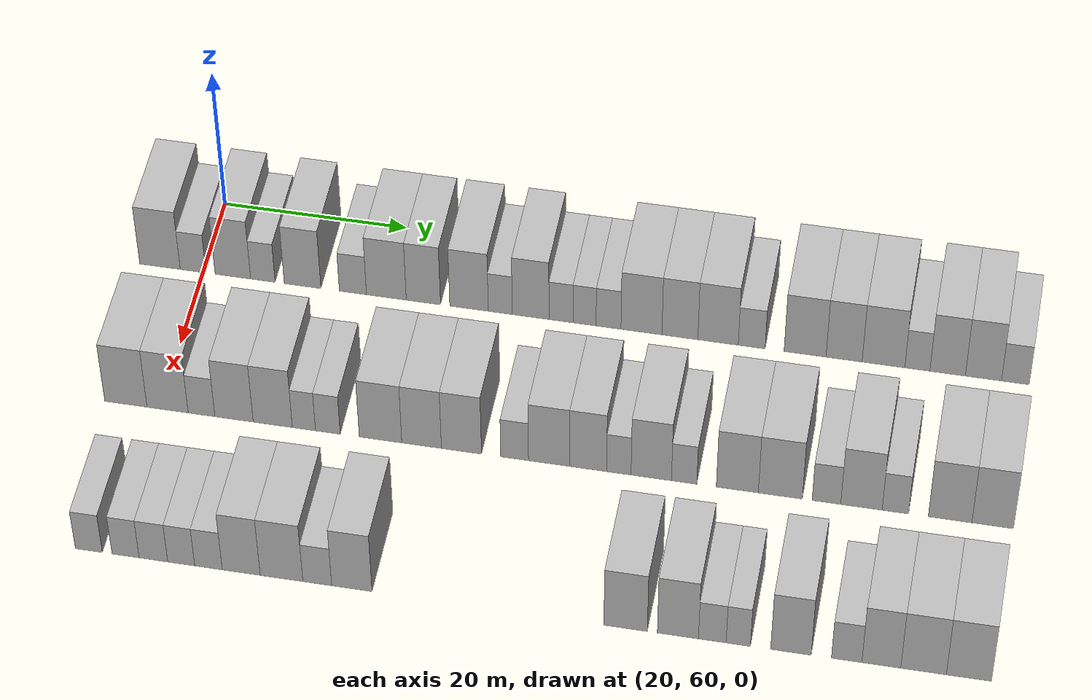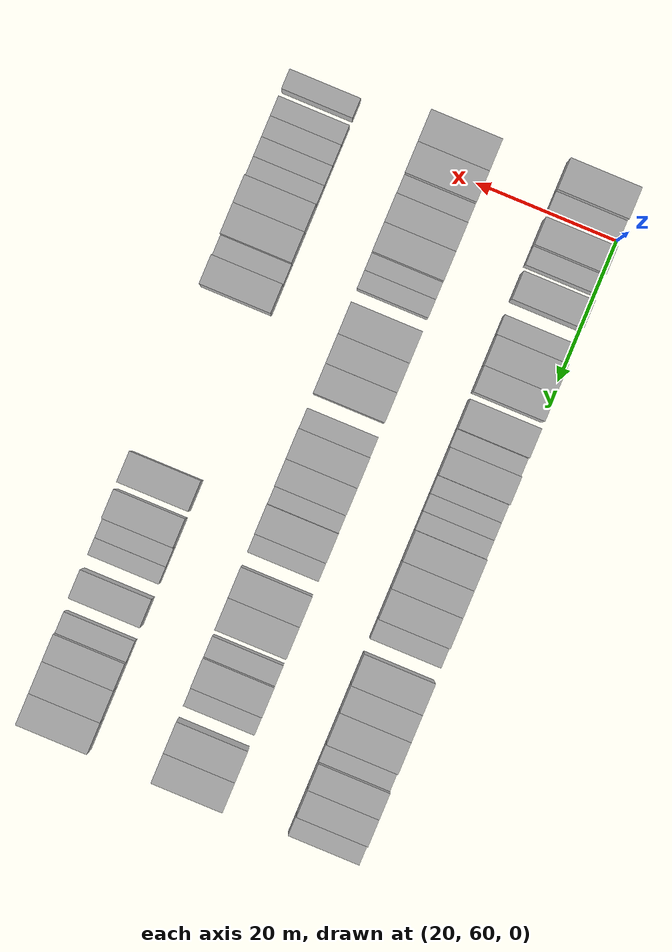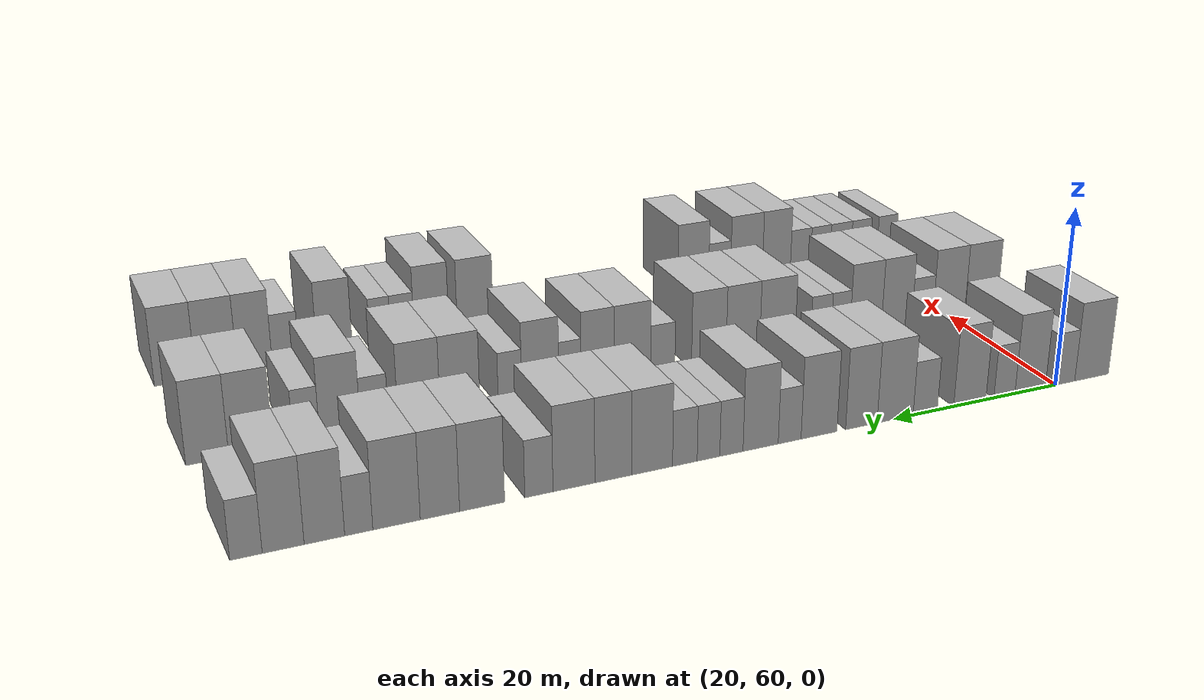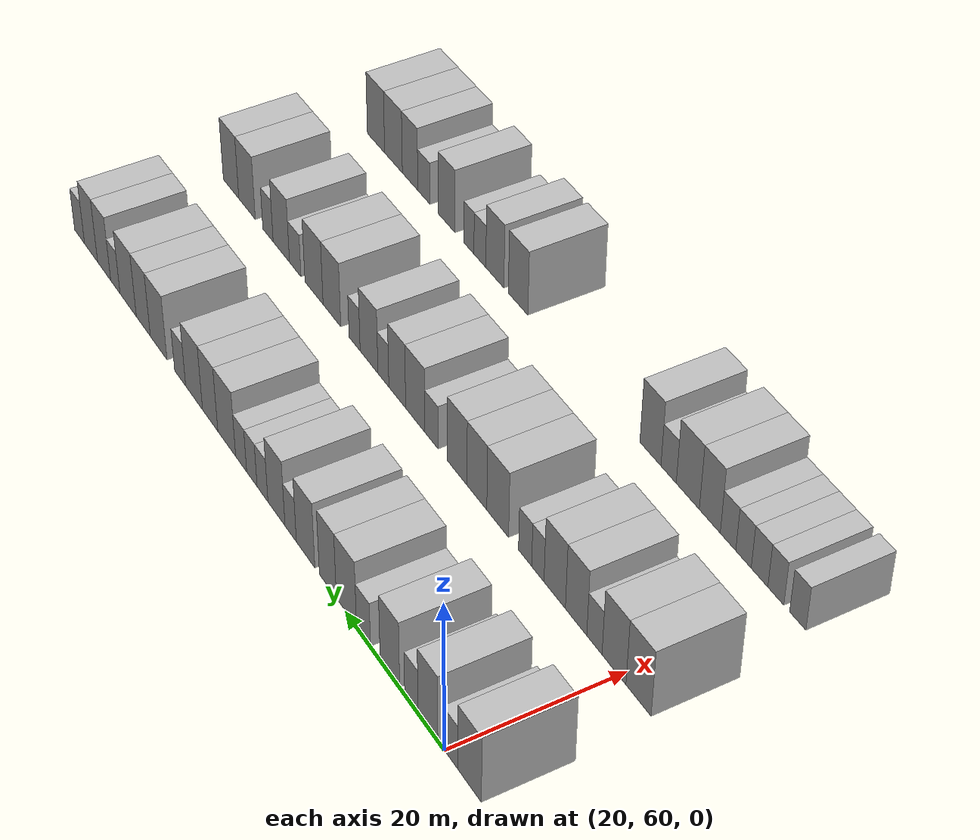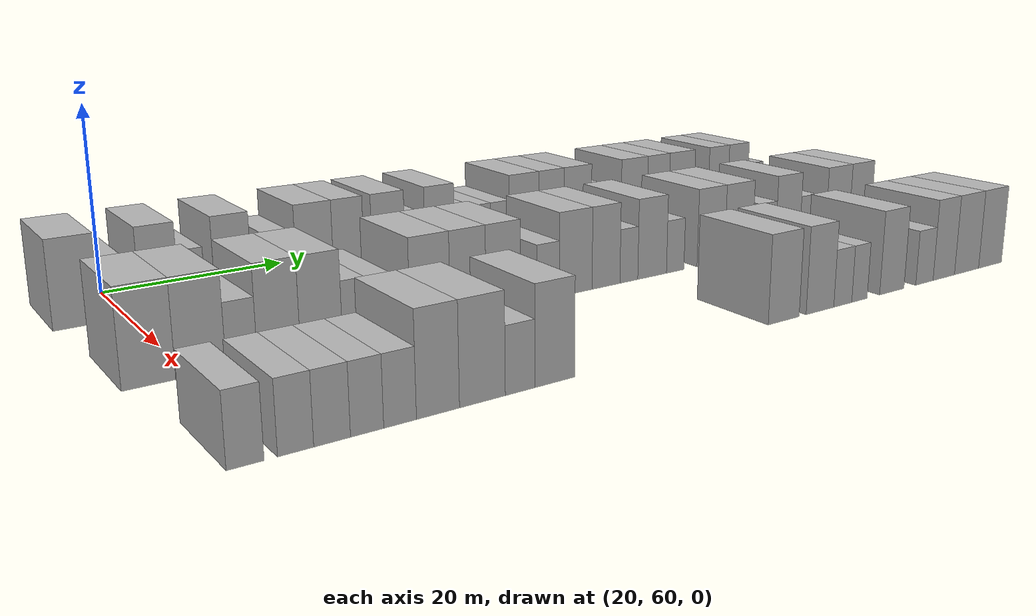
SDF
<sdf version="1.6">
 <world name="default">
  <model name="building_66">
   <static>1</static>
   <pose>25.0000 55.2554 0 0.000000 0.000000 0.000000</pose>
   <link name="link">
    <pose>0 0 4.50 0 0 0</pose>
    <collision name="collision"><geometry><box><size>10.0000 4.4283 9.0000</size></box></geometry></collision>
    <visual name="visual">
     <cast_shadows>0</cast_shadows>
     <geometry><box><size>10.0000 4.4283 9.0000</size></box></geometry>
     <material>
      <script>
       <uri>model://HANNAS_wall/materials/scripts</uri>
       <uri>model://HANNAS_wall/materials/textures</uri>
       <name>vrc/HANNAS_wall</name>
      </script>
     </material>
    </visual>
   </link>
  </model>
  <model name="building_67">
   <static>1</static>
   <pose>25.0000 58.8759 0 0.000000 0.000000 0.000000</pose>
   <link name="link">
    <pose>0 0 3.00 0 0 0</pose>
    <collision name="collision"><geometry><box><size>10.0000 2.8127 6.0000</size></box></geometry></collision>
    <visual name="visual">
     <cast_shadows>0</cast_shadows>
     <geometry><box><size>10.0000 2.8127 6.0000</size></box></geometry>
     <material>
      <script>
       <uri>model://HANNAS_wall/materials/scripts</uri>
       <uri>model://HANNAS_wall/materials/textures</uri>
       <name>vrc/HANNAS_wall</name>
      </script>
     </material>
    </visual>
   </link>
  </model>
  <model name="building_68">
   <static>1</static>
   <pose>25.0000 63.2213 0 0.000000 0.000000 0.000000</pose>
   <link name="link">
    <pose>0 0 4.50 0 0 0</pose>
    <collision name="collision"><geometry><box><size>10.0000 3.8780 9.0000</size></box></geometry></collision>
    <visual name="visual">
     <cast_shadows>0</cast_shadows>
     <geometry><box><size>10.0000 3.8780 9.0000</size></box></geometry>
     <material>
      <script>
       <uri>model://HANNAS_wall/materials/scripts</uri>
       <uri>model://HANNAS_wall/materials/textures</uri>
       <name>vrc/HANNAS_wall</name>
      </script>
     </material>
    </visual>
   </link>
  </model>
  <model name="building_69">
   <static>1</static>
   <pose>25.0000 66.4896 0 0.000000 0.000000 0.000000</pose>
   <link name="link">
    <pose>0 0 3.00 0 0 0</pose>
    <collision name="collision"><geometry><box><size>10.0000 2.6587 6.0000</size></box></geometry></collision>
    <visual name="visual">
     <cast_shadows>0</cast_shadows>
     <geometry><box><size>10.0000 2.6587 6.0000</size></box></geometry>
     <material>
      <script>
       <uri>model://HANNAS_wall/materials/scripts</uri>
       <uri>model://HANNAS_wall/materials/textures</uri>
       <name>vrc/HANNAS_wall</name>
      </script>
     </material>
    </visual>
   </link>
  </model>
  <model name="building_70">
   <static>1</static>
   <pose>25.0000 70.8092 0 0.000000 0.000000 0.000000</pose>
   <link name="link">
    <pose>0 0 4.50 0 0 0</pose>
    <collision name="collision"><geometry><box><size>10.0000 3.9805 9.0000</size></box></geometry></collision>
    <visual name="visual">
     <cast_shadows>0</cast_shadows>
     <geometry><box><size>10.0000 3.9805 9.0000</size></box></geometry>
     <material>
      <script>
       <uri>model://HANNAS_wall/materials/scripts</uri>
       <uri>model://HANNAS_wall/materials/textures</uri>
       <name>vrc/HANNAS_wall</name>
      </script>
     </material>
    </visual>
   </link>
  </model>
  <model name="building_71">
   <static>1</static>
   <pose>25.0000 76.2654 0 0.000000 0.000000 0.000000</pose>
   <link name="link">
    <pose>0 0 3.00 0 0 0</pose>
    <collision name="collision"><geometry><box><size>10.0000 2.9320 6.0000</size></box></geometry></collision>
    <visual name="visual">
     <cast_shadows>0</cast_shadows>
     <geometry><box><size>10.0000 2.9320 6.0000</size></box></geometry>
     <material>
      <script>
       <uri>model://HANNAS_wall/materials/scripts</uri>
       <uri>model://HANNAS_wall/materials/textures</uri>
       <name>vrc/HANNAS_wall</name>
      </script>
     </material>
    </visual>
   </link>
  </model>
  <model name="building_72">
   <static>1</static>
   <pose>25.0000 79.8795 0 0.000000 0.000000 0.000000</pose>
   <link name="link">
    <pose>0 0 4.50 0 0 0</pose>
    <collision name="collision"><geometry><box><size>10.0000 4.2961 9.0000</size></box></geometry></collision>
    <visual name="visual">
     <cast_shadows>0</cast_shadows>
     <geometry><box><size>10.0000 4.2961 9.0000</size></box></geometry>
     <material>
      <script>
       <uri>model://HANNAS_wall/materials/scripts</uri>
       <uri>model://HANNAS_wall/materials/textures</uri>
       <name>vrc/HANNAS_wall</name>
      </script>
     </material>
    </visual>
   </link>
  </model>
  <model name="building_73">
   <static>1</static>
   <pose>25.0000 83.8755 0 0.000000 0.000000 0.000000</pose>
   <link name="link">
    <pose>0 0 4.50 0 0 0</pose>
    <collision name="collision"><geometry><box><size>10.0000 3.6960 9.0000</size></box></geometry></collision>
    <visual name="visual">
     <cast_shadows>0</cast_shadows>
     <geometry><box><size>10.0000 3.6960 9.0000</size></box></geometry>
     <material>
      <script>
       <uri>model://HANNAS_wall/materials/scripts</uri>
       <uri>model://HANNAS_wall/materials/textures</uri>
       <name>vrc/HANNAS_wall</name>
      </script>
     </material>
    </visual>
   </link>
  </model>
  <model name="building_74">
   <static>1</static>
   <pose>25.0000 88.7893 0 0.000000 0.000000 0.000000</pose>
   <link name="link">
    <pose>0 0 4.50 0 0 0</pose>
    <collision name="collision"><geometry><box><size>10.0000 4.1315 9.0000</size></box></geometry></collision>
    <visual name="visual">
     <cast_shadows>0</cast_shadows>
     <geometry><box><size>10.0000 4.1315 9.0000</size></box></geometry>
     <material>
      <script>
       <uri>model://HANNAS_wall/materials/scripts</uri>
       <uri>model://HANNAS_wall/materials/textures</uri>
       <name>vrc/HANNAS_wall</name>
      </script>
     </material>
    </visual>
   </link>
  </model>
  <model name="building_75">
   <static>1</static>
   <pose>25.0000 92.1472 0 0.000000 0.000000 0.000000</pose>
   <link name="link">
    <pose>0 0 3.00 0 0 0</pose>
    <collision name="collision"><geometry><box><size>10.0000 2.5842 6.0000</size></box></geometry></collision>
    <visual name="visual">
     <cast_shadows>0</cast_shadows>
     <geometry><box><size>10.0000 2.5842 6.0000</size></box></geometry>
     <material>
      <script>
       <uri>model://HANNAS_wall/materials/scripts</uri>
       <uri>model://HANNAS_wall/materials/textures</uri>
       <name>vrc/HANNAS_wall</name>
      </script>
     </material>
    </visual>
   </link>
  </model>
  <model name="building_76">
   <static>1</static>
   <pose>25.0000 95.4046 0 0.000000 0.000000 0.000000</pose>
   <link name="link">
    <pose>0 0 4.50 0 0 0</pose>
    <collision name="collision"><geometry><box><size>10.0000 3.9306 9.0000</size></box></geometry></collision>
    <visual name="visual">
     <cast_shadows>0</cast_shadows>
     <geometry><box><size>10.0000 3.9306 9.0000</size></box></geometry>
     <material>
      <script>
       <uri>model://HANNAS_wall/materials/scripts</uri>
       <uri>model://HANNAS_wall/materials/textures</uri>
       <name>vrc/HANNAS_wall</name>
      </script>
     </material>
    </visual>
   </link>
  </model>
  <model name="building_77">
   <static>1</static>
   <pose>25.0000 98.6462 0 0.000000 0.000000 0.000000</pose>
   <link name="link">
    <pose>0 0 3.00 0 0 0</pose>
    <collision name="collision"><geometry><box><size>10.0000 2.5526 6.0000</size></box></geometry></collision>
    <visual name="visual">
     <cast_shadows>0</cast_shadows>
     <geometry><box><size>10.0000 2.5526 6.0000</size></box></geometry>
     <material>
      <script>
       <uri>model://HANNAS_wall/materials/scripts</uri>
       <uri>model://HANNAS_wall/materials/textures</uri>
       <name>vrc/HANNAS_wall</name>
      </script>
     </material>
    </visual>
   </link>
  </model>
  <model name="building_78">
   <static>1</static>
   <pose>25.0000 101.1556 0 0.000000 0.000000 0.000000</pose>
   <link name="link">
    <pose>0 0 3.00 0 0 0</pose>
    <collision name="collision"><geometry><box><size>10.0000 2.4662 6.0000</size></box></geometry></collision>
    <visual name="visual">
     <cast_shadows>0</cast_shadows>
     <geometry><box><size>10.0000 2.4662 6.0000</size></box></geometry>
     <material>
      <script>
       <uri>model://HANNAS_wall/materials/scripts</uri>
       <uri>model://HANNAS_wall/materials/textures</uri>
       <name>vrc/HANNAS_wall</name>
      </script>
     </material>
    </visual>
   </link>
  </model>
  <model name="building_79">
   <static>1</static>
   <pose>25.0000 103.7136 0 0.000000 0.000000 0.000000</pose>
   <link name="link">
    <pose>0 0 3.00 0 0 0</pose>
    <collision name="collision"><geometry><box><size>10.0000 2.6497 6.0000</size></box></geometry></collision>
    <visual name="visual">
     <cast_shadows>0</cast_shadows>
     <geometry><box><size>10.0000 2.6497 6.0000</size></box></geometry>
     <material>
      <script>
       <uri>model://HANNAS_wall/materials/scripts</uri>
       <uri>model://HANNAS_wall/materials/textures</uri>
       <name>vrc/HANNAS_wall</name>
      </script>
     </material>
    </visual>
   </link>
  </model>
  <model name="building_80">
   <static>1</static>
   <pose>25.0000 107.2167 0 0.000000 0.000000 0.000000</pose>
   <link name="link">
    <pose>0 0 4.50 0 0 0</pose>
    <collision name="collision"><geometry><box><size>10.0000 4.3565 9.0000</size></box></geometry></collision>
    <visual name="visual">
     <cast_shadows>0</cast_shadows>
     <geometry><box><size>10.0000 4.3565 9.0000</size></box></geometry>
     <material>
      <script>
       <uri>model://HANNAS_wall/materials/scripts</uri>
       <uri>model://HANNAS_wall/materials/textures</uri>
       <name>vrc/HANNAS_wall</name>
      </script>
     </material>
    </visual>
   </link>
  </model>
  <model name="building_81">
   <static>1</static>
   <pose>25.0000 111.3000 0 0.000000 0.000000 0.000000</pose>
   <link name="link">
    <pose>0 0 4.50 0 0 0</pose>
    <collision name="collision"><geometry><box><size>10.0000 3.8101 9.0000</size></box></geometry></collision>
    <visual name="visual">
     <cast_shadows>0</cast_shadows>
     <geometry><box><size>10.0000 3.8101 9.0000</size></box></geometry>
     <material>
      <script>
       <uri>model://HANNAS_wall/materials/scripts</uri>
       <uri>model://HANNAS_wall/materials/textures</uri>
       <name>vrc/HANNAS_wall</name>
      </script>
     </material>
    </visual>
   </link>
  </model>
  <model name="building_82">
   <static>1</static>
   <pose>25.0000 115.3463 0 0.000000 0.000000 0.000000</pose>
   <link name="link">
    <pose>0 0 4.50 0 0 0</pose>
    <collision name="collision"><geometry><box><size>10.0000 4.2824 9.0000</size></box></geometry></collision>
    <visual name="visual">
     <cast_shadows>0</cast_shadows>
     <geometry><box><size>10.0000 4.2824 9.0000</size></box></geometry>
     <material>
      <script>
       <uri>model://HANNAS_wall/materials/scripts</uri>
       <uri>model://HANNAS_wall/materials/textures</uri>
       <name>vrc/HANNAS_wall</name>
      </script>
     </material>
    </visual>
   </link>
  </model>
  <model name="building_83">
   <static>1</static>
   <pose>25.0000 118.9060 0 0.000000 0.000000 0.000000</pose>
   <link name="link">
    <pose>0 0 3.00 0 0 0</pose>
    <collision name="collision"><geometry><box><size>10.0000 2.8368 6.0000</size></box></geometry></collision>
    <visual name="visual">
     <cast_shadows>0</cast_shadows>
     <geometry><box><size>10.0000 2.8368 6.0000</size></box></geometry>
     <material>
      <script>
       <uri>model://HANNAS_wall/materials/scripts</uri>
       <uri>model://HANNAS_wall/materials/textures</uri>
       <name>vrc/HANNAS_wall</name>
      </script>
     </material>
    </visual>
   </link>
  </model>
  <model name="building_84">
   <static>1</static>
   <pose>25.0000 124.5328 0 0.000000 0.000000 0.000000</pose>
   <link name="link">
    <pose>0 0 4.50 0 0 0</pose>
    <collision name="collision"><geometry><box><size>10.0000 4.4168 9.0000</size></box></geometry></collision>
    <visual name="visual">
     <cast_shadows>0</cast_shadows>
     <geometry><box><size>10.0000 4.4168 9.0000</size></box></geometry>
     <material>
      <script>
       <uri>model://HANNAS_wall/materials/scripts</uri>
       <uri>model://HANNAS_wall/materials/textures</uri>
       <name>vrc/HANNAS_wall</name>
      </script>
     </material>
    </visual>
   </link>
  </model>
  <model name="building_85">
   <static>1</static>
   <pose>25.0000 128.6353 0 0.000000 0.000000 0.000000</pose>
   <link name="link">
    <pose>0 0 4.50 0 0 0</pose>
    <collision name="collision"><geometry><box><size>10.0000 3.7884 9.0000</size></box></geometry></collision>
    <visual name="visual">
     <cast_shadows>0</cast_shadows>
     <geometry><box><size>10.0000 3.7884 9.0000</size></box></geometry>
     <material>
      <script>
       <uri>model://HANNAS_wall/materials/scripts</uri>
       <uri>model://HANNAS_wall/materials/textures</uri>
       <name>vrc/HANNAS_wall</name>
      </script>
     </material>
    </visual>
   </link>
  </model>
  <model name="building_86">
   <static>1</static>
   <pose>25.0000 132.7688 0 0.000000 0.000000 0.000000</pose>
   <link name="link">
    <pose>0 0 4.50 0 0 0</pose>
    <collision name="collision"><geometry><box><size>10.0000 4.4785 9.0000</size></box></geometry></collision>
    <visual name="visual">
     <cast_shadows>0</cast_shadows>
     <geometry><box><size>10.0000 4.4785 9.0000</size></box></geometry>
     <material>
      <script>
       <uri>model://HANNAS_wall/materials/scripts</uri>
       <uri>model://HANNAS_wall/materials/textures</uri>
       <name>vrc/HANNAS_wall</name>
      </script>
     </material>
    </visual>
   </link>
  </model>
  <model name="building_87">
   <static>1</static>
   <pose>25.0000 136.3146 0 0.000000 0.000000 0.000000</pose>
   <link name="link">
    <pose>0 0 3.00 0 0 0</pose>
    <collision name="collision"><geometry><box><size>10.0000 2.6132 6.0000</size></box></geometry></collision>
    <visual name="visual">
     <cast_shadows>0</cast_shadows>
     <geometry><box><size>10.0000 2.6132 6.0000</size></box></geometry>
     <material>
      <script>
       <uri>model://HANNAS_wall/materials/scripts</uri>
       <uri>model://HANNAS_wall/materials/textures</uri>
       <name>vrc/HANNAS_wall</name>
      </script>
     </material>
    </visual>
   </link>
  </model>
  <model name="building_88">
   <static>1</static>
   <pose>25.0000 139.4759 0 0.000000 0.000000 0.000000</pose>
   <link name="link">
    <pose>0 0 4.50 0 0 0</pose>
    <collision name="collision"><geometry><box><size>10.0000 3.7092 9.0000</size></box></geometry></collision>
    <visual name="visual">
     <cast_shadows>0</cast_shadows>
     <geometry><box><size>10.0000 3.7092 9.0000</size></box></geometry>
     <material>
      <script>
       <uri>model://HANNAS_wall/materials/scripts</uri>
       <uri>model://HANNAS_wall/materials/textures</uri>
       <name>vrc/HANNAS_wall</name>
      </script>
     </material>
    </visual>
   </link>
  </model>
  <model name="building_89">
   <static>1</static>
   <pose>25.0000 143.2144 0 0.000000 0.000000 0.000000</pose>
   <link name="link">
    <pose>0 0 4.50 0 0 0</pose>
    <collision name="collision"><geometry><box><size>10.0000 3.7678 9.0000</size></box></geometry></collision>
    <visual name="visual">
     <cast_shadows>0</cast_shadows>
     <geometry><box><size>10.0000 3.7678 9.0000</size></box></geometry>
     <material>
      <script>
       <uri>model://HANNAS_wall/materials/scripts</uri>
       <uri>model://HANNAS_wall/materials/textures</uri>
       <name>vrc/HANNAS_wall</name>
      </script>
     </material>
    </visual>
   </link>
  </model>
  <model name="building_90">
   <static>1</static>
   <pose>25.0000 146.5369 0 0.000000 0.000000 0.000000</pose>
   <link name="link">
    <pose>0 0 3.00 0 0 0</pose>
    <collision name="collision"><geometry><box><size>10.0000 2.8772 6.0000</size></box></geometry></collision>
    <visual name="visual">
     <cast_shadows>0</cast_shadows>
     <geometry><box><size>10.0000 2.8772 6.0000</size></box></geometry>
     <material>
      <script>
       <uri>model://HANNAS_wall/materials/scripts</uri>
       <uri>model://HANNAS_wall/materials/textures</uri>
       <name>vrc/HANNAS_wall</name>
      </script>
     </material>
    </visual>
   </link>
  </model>
  <model name="building_173">
   <static>1</static>
   <pose>44.0000 56.4223 0 0.000000 0.000000 0.000000</pose>
   <link name="link">
    <pose>0 0 4.50 0 0 0</pose>
    <collision name="collision"><geometry><box><size>10.0000 4.4847 9.0000</size></box></geometry></collision>
    <visual name="visual">
     <cast_shadows>0</cast_shadows>
     <geometry><box><size>10.0000 4.4847 9.0000</size></box></geometry>
     <material>
      <script>
       <uri>model://HANNAS_wall/materials/scripts</uri>
       <uri>model://HANNAS_wall/materials/textures</uri>
       <name>vrc/HANNAS_wall</name>
      </script>
     </material>
    </visual>
   </link>
  </model>
  <model name="building_174">
   <static>1</static>
   <pose>44.0000 60.8453 0 0.000000 0.000000 0.000000</pose>
   <link name="link">
    <pose>0 0 4.50 0 0 0</pose>
    <collision name="collision"><geometry><box><size>10.0000 4.3612 9.0000</size></box></geometry></collision>
    <visual name="visual">
     <cast_shadows>0</cast_shadows>
     <geometry><box><size>10.0000 4.3612 9.0000</size></box></geometry>
     <material>
      <script>
       <uri>model://HANNAS_wall/materials/scripts</uri>
       <uri>model://HANNAS_wall/materials/textures</uri>
       <name>vrc/HANNAS_wall</name>
      </script>
     </material>
    </visual>
   </link>
  </model>
  <model name="building_175">
   <static>1</static>
   <pose>44.0000 64.4416 0 0.000000 0.000000 0.000000</pose>
   <link name="link">
    <pose>0 0 3.00 0 0 0</pose>
    <collision name="collision"><geometry><box><size>10.0000 2.8313 6.0000</size></box></geometry></collision>
    <visual name="visual">
     <cast_shadows>0</cast_shadows>
     <geometry><box><size>10.0000 2.8313 6.0000</size></box></geometry>
     <material>
      <script>
       <uri>model://HANNAS_wall/materials/scripts</uri>
       <uri>model://HANNAS_wall/materials/textures</uri>
       <name>vrc/HANNAS_wall</name>
      </script>
     </material>
    </visual>
   </link>
  </model>
  <model name="building_176">
   <static>1</static>
   <pose>44.0000 67.8784 0 0.000000 0.000000 0.000000</pose>
   <link name="link">
    <pose>0 0 4.50 0 0 0</pose>
    <collision name="collision"><geometry><box><size>10.0000 4.0425 9.0000</size></box></geometry></collision>
    <visual name="visual">
     <cast_shadows>0</cast_shadows>
     <geometry><box><size>10.0000 4.0425 9.0000</size></box></geometry>
     <material>
      <script>
       <uri>model://HANNAS_wall/materials/scripts</uri>
       <uri>model://HANNAS_wall/materials/textures</uri>
       <name>vrc/HANNAS_wall</name>
      </script>
     </material>
    </visual>
   </link>
  </model>
  <model name="building_177">
   <static>1</static>
   <pose>44.0000 71.9637 0 0.000000 0.000000 0.000000</pose>
   <link name="link">
    <pose>0 0 4.50 0 0 0</pose>
    <collision name="collision"><geometry><box><size>10.0000 4.1280 9.0000</size></box></geometry></collision>
    <visual name="visual">
     <cast_shadows>0</cast_shadows>
     <geometry><box><size>10.0000 4.1280 9.0000</size></box></geometry>
     <material>
      <script>
       <uri>model://HANNAS_wall/materials/scripts</uri>
       <uri>model://HANNAS_wall/materials/textures</uri>
       <name>vrc/HANNAS_wall</name>
      </script>
     </material>
    </visual>
   </link>
  </model>
  <model name="building_178">
   <static>1</static>
   <pose>44.0000 75.2439 0 0.000000 0.000000 0.000000</pose>
   <link name="link">
    <pose>0 0 3.00 0 0 0</pose>
    <collision name="collision"><geometry><box><size>10.0000 2.4323 6.0000</size></box></geometry></collision>
    <visual name="visual">
     <cast_shadows>0</cast_shadows>
     <geometry><box><size>10.0000 2.4323 6.0000</size></box></geometry>
     <material>
      <script>
       <uri>model://HANNAS_wall/materials/scripts</uri>
       <uri>model://HANNAS_wall/materials/textures</uri>
       <name>vrc/HANNAS_wall</name>
      </script>
     </material>
    </visual>
   </link>
  </model>
  <model name="building_179">
   <static>1</static>
   <pose>44.0000 77.7595 0 0.000000 0.000000 0.000000</pose>
   <link name="link">
    <pose>0 0 3.00 0 0 0</pose>
    <collision name="collision"><geometry><box><size>10.0000 2.5990 6.0000</size></box></geometry></collision>
    <visual name="visual">
     <cast_shadows>0</cast_shadows>
     <geometry><box><size>10.0000 2.5990 6.0000</size></box></geometry>
     <material>
      <script>
       <uri>model://HANNAS_wall/materials/scripts</uri>
       <uri>model://HANNAS_wall/materials/textures</uri>
       <name>vrc/HANNAS_wall</name>
      </script>
     </material>
    </visual>
   </link>
  </model>
  <model name="building_180">
   <static>1</static>
   <pose>44.0000 83.2820 0 0.000000 0.000000 0.000000</pose>
   <link name="link">
    <pose>0 0 4.50 0 0 0</pose>
    <collision name="collision"><geometry><box><size>10.0000 4.4458 9.0000</size></box></geometry></collision>
    <visual name="visual">
     <cast_shadows>0</cast_shadows>
     <geometry><box><size>10.0000 4.4458 9.0000</size></box></geometry>
     <material>
      <script>
       <uri>model://HANNAS_wall/materials/scripts</uri>
       <uri>model://HANNAS_wall/materials/textures</uri>
       <name>vrc/HANNAS_wall</name>
      </script>
     </material>
    </visual>
   </link>
  </model>
  <model name="building_181">
   <static>1</static>
   <pose>44.0000 87.5731 0 0.000000 0.000000 0.000000</pose>
   <link name="link">
    <pose>0 0 4.50 0 0 0</pose>
    <collision name="collision"><geometry><box><size>10.0000 4.1365 9.0000</size></box></geometry></collision>
    <visual name="visual">
     <cast_shadows>0</cast_shadows>
     <geometry><box><size>10.0000 4.1365 9.0000</size></box></geometry>
     <material>
      <script>
       <uri>model://HANNAS_wall/materials/scripts</uri>
       <uri>model://HANNAS_wall/materials/textures</uri>
       <name>vrc/HANNAS_wall</name>
      </script>
     </material>
    </visual>
   </link>
  </model>
  <model name="building_182">
   <static>1</static>
   <pose>44.0000 91.7295 0 0.000000 0.000000 0.000000</pose>
   <link name="link">
    <pose>0 0 4.50 0 0 0</pose>
    <collision name="collision"><geometry><box><size>10.0000 4.1762 9.0000</size></box></geometry></collision>
    <visual name="visual">
     <cast_shadows>0</cast_shadows>
     <geometry><box><size>10.0000 4.1762 9.0000</size></box></geometry>
     <material>
      <script>
       <uri>model://HANNAS_wall/materials/scripts</uri>
       <uri>model://HANNAS_wall/materials/textures</uri>
       <name>vrc/HANNAS_wall</name>
      </script>
     </material>
    </visual>
   </link>
  </model>
  <model name="building_183">
   <static>1</static>
   <pose>44.0000 97.2569 0 0.000000 0.000000 0.000000</pose>
   <link name="link">
    <pose>0 0 3.00 0 0 0</pose>
    <collision name="collision"><geometry><box><size>10.0000 2.8787 6.0000</size></box></geometry></collision>
    <visual name="visual">
     <cast_shadows>0</cast_shadows>
     <geometry><box><size>10.0000 2.8787 6.0000</size></box></geometry>
     <material>
      <script>
       <uri>model://HANNAS_wall/materials/scripts</uri>
       <uri>model://HANNAS_wall/materials/textures</uri>
       <name>vrc/HANNAS_wall</name>
      </script>
     </material>
    </visual>
   </link>
  </model>
  <model name="building_184">
   <static>1</static>
   <pose>44.0000 100.8347 0 0.000000 0.000000 0.000000</pose>
   <link name="link">
    <pose>0 0 4.50 0 0 0</pose>
    <collision name="collision"><geometry><box><size>10.0000 4.2768 9.0000</size></box></geometry></collision>
    <visual name="visual">
     <cast_shadows>0</cast_shadows>
     <geometry><box><size>10.0000 4.2768 9.0000</size></box></geometry>
     <material>
      <script>
       <uri>model://HANNAS_wall/materials/scripts</uri>
       <uri>model://HANNAS_wall/materials/textures</uri>
       <name>vrc/HANNAS_wall</name>
      </script>
     </material>
    </visual>
   </link>
  </model>
  <model name="building_185">
   <static>1</static>
   <pose>44.0000 104.8781 0 0.000000 0.000000 0.000000</pose>
   <link name="link">
    <pose>0 0 4.50 0 0 0</pose>
    <collision name="collision"><geometry><box><size>10.0000 3.8100 9.0000</size></box></geometry></collision>
    <visual name="visual">
     <cast_shadows>0</cast_shadows>
     <geometry><box><size>10.0000 3.8100 9.0000</size></box></geometry>
     <material>
      <script>
       <uri>model://HANNAS_wall/materials/scripts</uri>
       <uri>model://HANNAS_wall/materials/textures</uri>
       <name>vrc/HANNAS_wall</name>
      </script>
     </material>
    </visual>
   </link>
  </model>
  <model name="building_186">
   <static>1</static>
   <pose>44.0000 108.0389 0 0.000000 0.000000 0.000000</pose>
   <link name="link">
    <pose>0 0 3.00 0 0 0</pose>
    <collision name="collision"><geometry><box><size>10.0000 2.5116 6.0000</size></box></geometry></collision>
    <visual name="visual">
     <cast_shadows>0</cast_shadows>
     <geometry><box><size>10.0000 2.5116 6.0000</size></box></geometry>
     <material>
      <script>
       <uri>model://HANNAS_wall/materials/scripts</uri>
       <uri>model://HANNAS_wall/materials/textures</uri>
       <name>vrc/HANNAS_wall</name>
      </script>
     </material>
    </visual>
   </link>
  </model>
  <model name="building_187">
   <static>1</static>
   <pose>44.0000 111.3740 0 0.000000 0.000000 0.000000</pose>
   <link name="link">
    <pose>0 0 4.50 0 0 0</pose>
    <collision name="collision"><geometry><box><size>10.0000 4.1586 9.0000</size></box></geometry></collision>
    <visual name="visual">
     <cast_shadows>0</cast_shadows>
     <geometry><box><size>10.0000 4.1586 9.0000</size></box></geometry>
     <material>
      <script>
       <uri>model://HANNAS_wall/materials/scripts</uri>
       <uri>model://HANNAS_wall/materials/textures</uri>
       <name>vrc/HANNAS_wall</name>
      </script>
     </material>
    </visual>
   </link>
  </model>
  <model name="building_188">
   <static>1</static>
   <pose>44.0000 114.7598 0 0.000000 0.000000 0.000000</pose>
   <link name="link">
    <pose>0 0 3.00 0 0 0</pose>
    <collision name="collision"><geometry><box><size>10.0000 2.6132 6.0000</size></box></geometry></collision>
    <visual name="visual">
     <cast_shadows>0</cast_shadows>
     <geometry><box><size>10.0000 2.6132 6.0000</size></box></geometry>
     <material>
      <script>
       <uri>model://HANNAS_wall/materials/scripts</uri>
       <uri>model://HANNAS_wall/materials/textures</uri>
       <name>vrc/HANNAS_wall</name>
      </script>
     </material>
    </visual>
   </link>
  </model>
  <model name="building_189">
   <static>1</static>
   <pose>44.0000 120.2163 0 0.000000 0.000000 0.000000</pose>
   <link name="link">
    <pose>0 0 4.50 0 0 0</pose>
    <collision name="collision"><geometry><box><size>10.0000 4.2998 9.0000</size></box></geometry></collision>
    <visual name="visual">
     <cast_shadows>0</cast_shadows>
     <geometry><box><size>10.0000 4.2998 9.0000</size></box></geometry>
     <material>
      <script>
       <uri>model://HANNAS_wall/materials/scripts</uri>
       <uri>model://HANNAS_wall/materials/textures</uri>
       <name>vrc/HANNAS_wall</name>
      </script>
     </material>
    </visual>
   </link>
  </model>
  <model name="building_190">
   <static>1</static>
   <pose>44.0000 124.6137 0 0.000000 0.000000 0.000000</pose>
   <link name="link">
    <pose>0 0 4.50 0 0 0</pose>
    <collision name="collision"><geometry><box><size>10.0000 4.4949 9.0000</size></box></geometry></collision>
    <visual name="visual">
     <cast_shadows>0</cast_shadows>
     <geometry><box><size>10.0000 4.4949 9.0000</size></box></geometry>
     <material>
      <script>
       <uri>model://HANNAS_wall/materials/scripts</uri>
       <uri>model://HANNAS_wall/materials/textures</uri>
       <name>vrc/HANNAS_wall</name>
      </script>
     </material>
    </visual>
   </link>
  </model>
  <model name="building_191">
   <static>1</static>
   <pose>44.0000 129.3174 0 0.000000 0.000000 0.000000</pose>
   <link name="link">
    <pose>0 0 3.00 0 0 0</pose>
    <collision name="collision"><geometry><box><size>10.0000 2.9126 6.0000</size></box></geometry></collision>
    <visual name="visual">
     <cast_shadows>0</cast_shadows>
     <geometry><box><size>10.0000 2.9126 6.0000</size></box></geometry>
     <material>
      <script>
       <uri>model://HANNAS_wall/materials/scripts</uri>
       <uri>model://HANNAS_wall/materials/textures</uri>
       <name>vrc/HANNAS_wall</name>
      </script>
     </material>
    </visual>
   </link>
  </model>
  <model name="building_192">
   <static>1</static>
   <pose>44.0000 132.8804 0 0.000000 0.000000 0.000000</pose>
   <link name="link">
    <pose>0 0 4.50 0 0 0</pose>
    <collision name="collision"><geometry><box><size>10.0000 4.2134 9.0000</size></box></geometry></collision>
    <visual name="visual">
     <cast_shadows>0</cast_shadows>
     <geometry><box><size>10.0000 4.2134 9.0000</size></box></geometry>
     <material>
      <script>
       <uri>model://HANNAS_wall/materials/scripts</uri>
       <uri>model://HANNAS_wall/materials/textures</uri>
       <name>vrc/HANNAS_wall</name>
      </script>
     </material>
    </visual>
   </link>
  </model>
  <model name="building_193">
   <static>1</static>
   <pose>44.0000 136.3270 0 0.000000 0.000000 0.000000</pose>
   <link name="link">
    <pose>0 0 3.00 0 0 0</pose>
    <collision name="collision"><geometry><box><size>10.0000 2.6797 6.0000</size></box></geometry></collision>
    <visual name="visual">
     <cast_shadows>0</cast_shadows>
     <geometry><box><size>10.0000 2.6797 6.0000</size></box></geometry>
     <material>
      <script>
       <uri>model://HANNAS_wall/materials/scripts</uri>
       <uri>model://HANNAS_wall/materials/textures</uri>
       <name>vrc/HANNAS_wall</name>
      </script>
     </material>
    </visual>
   </link>
  </model>
  <model name="building_194">
   <static>1</static>
   <pose>44.0000 141.8672 0 0.000000 0.000000 0.000000</pose>
   <link name="link">
    <pose>0 0 4.50 0 0 0</pose>
    <collision name="collision"><geometry><box><size>10.0000 4.4007 9.0000</size></box></geometry></collision>
    <visual name="visual">
     <cast_shadows>0</cast_shadows>
     <geometry><box><size>10.0000 4.4007 9.0000</size></box></geometry>
     <material>
      <script>
       <uri>model://HANNAS_wall/materials/scripts</uri>
       <uri>model://HANNAS_wall/materials/textures</uri>
       <name>vrc/HANNAS_wall</name>
      </script>
     </material>
    </visual>
   </link>
  </model>
  <model name="building_195">
   <static>1</static>
   <pose>44.0000 146.1658 0 0.000000 0.000000 0.000000</pose>
   <link name="link">
    <pose>0 0 4.50 0 0 0</pose>
    <collision name="collision"><geometry><box><size>10.0000 4.1967 9.0000</size></box></geometry></collision>
    <visual name="visual">
     <cast_shadows>0</cast_shadows>
     <geometry><box><size>10.0000 4.1967 9.0000</size></box></geometry>
     <material>
      <script>
       <uri>model://HANNAS_wall/materials/scripts</uri>
       <uri>model://HANNAS_wall/materials/textures</uri>
       <name>vrc/HANNAS_wall</name>
      </script>
     </material>
    </visual>
   </link>
  </model>
  <model name="building_288">
   <static>1</static>
   <pose>63.0000 57.5110 0 0.000000 0.000000 0.000000</pose>
   <link name="link">
    <pose>0 0 3.00 0 0 0</pose>
    <collision name="collision"><geometry><box><size>10.0000 2.7791 6.0000</size></box></geometry></collision>
    <visual name="visual">
     <cast_shadows>0</cast_shadows>
     <geometry><box><size>10.0000 2.7791 6.0000</size></box></geometry>
     <material>
      <script>
       <uri>model://HANNAS_wall/materials/scripts</uri>
       <uri>model://HANNAS_wall/materials/textures</uri>
       <name>vrc/HANNAS_wall</name>
      </script>
     </material>
    </visual>
   </link>
  </model>
  <model name="building_289">
   <static>1</static>
   <pose>63.0000 61.2931 0 0.000000 0.000000 0.000000</pose>
   <link name="link">
    <pose>0 0 3.00 0 0 0</pose>
    <collision name="collision"><geometry><box><size>10.0000 2.7852 6.0000</size></box></geometry></collision>
    <visual name="visual">
     <cast_shadows>0</cast_shadows>
     <geometry><box><size>10.0000 2.7852 6.0000</size></box></geometry>
     <material>
      <script>
       <uri>model://HANNAS_wall/materials/scripts</uri>
       <uri>model://HANNAS_wall/materials/textures</uri>
       <name>vrc/HANNAS_wall</name>
      </script>
     </material>
    </visual>
   </link>
  </model>
  <model name="building_290">
   <static>1</static>
   <pose>63.0000 64.1563 0 0.000000 0.000000 0.000000</pose>
   <link name="link">
    <pose>0 0 3.00 0 0 0</pose>
    <collision name="collision"><geometry><box><size>10.0000 2.9411 6.0000</size></box></geometry></collision>
    <visual name="visual">
     <cast_shadows>0</cast_shadows>
     <geometry><box><size>10.0000 2.9411 6.0000</size></box></geometry>
     <material>
      <script>
       <uri>model://HANNAS_wall/materials/scripts</uri>
       <uri>model://HANNAS_wall/materials/textures</uri>
       <name>vrc/HANNAS_wall</name>
      </script>
     </material>
    </visual>
   </link>
  </model>
  <model name="building_291">
   <static>1</static>
   <pose>63.0000 67.0080 0 0.000000 0.000000 0.000000</pose>
   <link name="link">
    <pose>0 0 3.00 0 0 0</pose>
    <collision name="collision"><geometry><box><size>10.0000 2.7623 6.0000</size></box></geometry></collision>
    <visual name="visual">
     <cast_shadows>0</cast_shadows>
     <geometry><box><size>10.0000 2.7623 6.0000</size></box></geometry>
     <material>
      <script>
       <uri>model://HANNAS_wall/materials/scripts</uri>
       <uri>model://HANNAS_wall/materials/textures</uri>
       <name>vrc/HANNAS_wall</name>
      </script>
     </material>
    </visual>
   </link>
  </model>
  <model name="building_292">
   <static>1</static>
   <pose>63.0000 69.7993 0 0.000000 0.000000 0.000000</pose>
   <link name="link">
    <pose>0 0 3.00 0 0 0</pose>
    <collision name="collision"><geometry><box><size>10.0000 2.8204 6.0000</size></box></geometry></collision>
    <visual name="visual">
     <cast_shadows>0</cast_shadows>
     <geometry><box><size>10.0000 2.8204 6.0000</size></box></geometry>
     <material>
      <script>
       <uri>model://HANNAS_wall/materials/scripts</uri>
       <uri>model://HANNAS_wall/materials/textures</uri>
       <name>vrc/HANNAS_wall</name>
      </script>
     </material>
    </visual>
   </link>
  </model>
  <model name="building_293">
   <static>1</static>
   <pose>63.0000 73.1456 0 0.000000 0.000000 0.000000</pose>
   <link name="link">
    <pose>0 0 4.50 0 0 0</pose>
    <collision name="collision"><geometry><box><size>10.0000 3.8722 9.0000</size></box></geometry></collision>
    <visual name="visual">
     <cast_shadows>0</cast_shadows>
     <geometry><box><size>10.0000 3.8722 9.0000</size></box></geometry>
     <material>
      <script>
       <uri>model://HANNAS_wall/materials/scripts</uri>
       <uri>model://HANNAS_wall/materials/textures</uri>
       <name>vrc/HANNAS_wall</name>
      </script>
     </material>
    </visual>
   </link>
  </model>
  <model name="building_294">
   <static>1</static>
   <pose>63.0000 77.2536 0 0.000000 0.000000 0.000000</pose>
   <link name="link">
    <pose>0 0 4.50 0 0 0</pose>
    <collision name="collision"><geometry><box><size>10.0000 4.3438 9.0000</size></box></geometry></collision>
    <visual name="visual">
     <cast_shadows>0</cast_shadows>
     <geometry><box><size>10.0000 4.3438 9.0000</size></box></geometry>
     <material>
      <script>
       <uri>model://HANNAS_wall/materials/scripts</uri>
       <uri>model://HANNAS_wall/materials/textures</uri>
       <name>vrc/HANNAS_wall</name>
      </script>
     </material>
    </visual>
   </link>
  </model>
  <model name="building_295">
   <static>1</static>
   <pose>63.0000 80.8923 0 0.000000 0.000000 0.000000</pose>
   <link name="link">
    <pose>0 0 3.00 0 0 0</pose>
    <collision name="collision"><geometry><box><size>10.0000 2.9336 6.0000</size></box></geometry></collision>
    <visual name="visual">
     <cast_shadows>0</cast_shadows>
     <geometry><box><size>10.0000 2.9336 6.0000</size></box></geometry>
     <material>
      <script>
       <uri>model://HANNAS_wall/materials/scripts</uri>
       <uri>model://HANNAS_wall/materials/textures</uri>
       <name>vrc/HANNAS_wall</name>
      </script>
     </material>
    </visual>
   </link>
  </model>
  <model name="building_296">
   <static>1</static>
   <pose>63.0000 84.4081 0 0.000000 0.000000 0.000000</pose>
   <link name="link">
    <pose>0 0 4.50 0 0 0</pose>
    <collision name="collision"><geometry><box><size>10.0000 4.0980 9.0000</size></box></geometry></collision>
    <visual name="visual">
     <cast_shadows>0</cast_shadows>
     <geometry><box><size>10.0000 4.0980 9.0000</size></box></geometry>
     <material>
      <script>
       <uri>model://HANNAS_wall/materials/scripts</uri>
       <uri>model://HANNAS_wall/materials/textures</uri>
       <name>vrc/HANNAS_wall</name>
      </script>
     </material>
    </visual>
   </link>
  </model>
  <model name="building_297">
   <static>1</static>
   <pose>63.0000 111.9451 0 0.000000 0.000000 0.000000</pose>
   <link name="link">
    <pose>0 0 4.50 0 0 0</pose>
    <collision name="collision"><geometry><box><size>10.0000 4.3253 9.0000</size></box></geometry></collision>
    <visual name="visual">
     <cast_shadows>0</cast_shadows>
     <geometry><box><size>10.0000 4.3253 9.0000</size></box></geometry>
     <material>
      <script>
       <uri>model://HANNAS_wall/materials/scripts</uri>
       <uri>model://HANNAS_wall/materials/textures</uri>
       <name>vrc/HANNAS_wall</name>
      </script>
     </material>
    </visual>
   </link>
  </model>
  <model name="building_298">
   <static>1</static>
   <pose>63.0000 117.1501 0 0.000000 0.000000 0.000000</pose>
   <link name="link">
    <pose>0 0 4.50 0 0 0</pose>
    <collision name="collision"><geometry><box><size>10.0000 4.0848 9.0000</size></box></geometry></collision>
    <visual name="visual">
     <cast_shadows>0</cast_shadows>
     <geometry><box><size>10.0000 4.0848 9.0000</size></box></geometry>
     <material>
      <script>
       <uri>model://HANNAS_wall/materials/scripts</uri>
       <uri>model://HANNAS_wall/materials/textures</uri>
       <name>vrc/HANNAS_wall</name>
      </script>
     </material>
    </visual>
   </link>
  </model>
  <model name="building_299">
   <static>1</static>
   <pose>63.0000 120.5646 0 0.000000 0.000000 0.000000</pose>
   <link name="link">
    <pose>0 0 3.00 0 0 0</pose>
    <collision name="collision"><geometry><box><size>10.0000 2.7442 6.0000</size></box></geometry></collision>
    <visual name="visual">
     <cast_shadows>0</cast_shadows>
     <geometry><box><size>10.0000 2.7442 6.0000</size></box></geometry>
     <material>
      <script>
       <uri>model://HANNAS_wall/materials/scripts</uri>
       <uri>model://HANNAS_wall/materials/textures</uri>
       <name>vrc/HANNAS_wall</name>
      </script>
     </material>
    </visual>
   </link>
  </model>
  <model name="building_300">
   <static>1</static>
   <pose>63.0000 123.1414 0 0.000000 0.000000 0.000000</pose>
   <link name="link">
    <pose>0 0 3.00 0 0 0</pose>
    <collision name="collision"><geometry><box><size>10.0000 2.4093 6.0000</size></box></geometry></collision>
    <visual name="visual">
     <cast_shadows>0</cast_shadows>
     <geometry><box><size>10.0000 2.4093 6.0000</size></box></geometry>
     <material>
      <script>
       <uri>model://HANNAS_wall/materials/scripts</uri>
       <uri>model://HANNAS_wall/materials/textures</uri>
       <name>vrc/HANNAS_wall</name>
      </script>
     </material>
    </visual>
   </link>
  </model>
  <model name="building_301">
   <static>1</static>
   <pose>63.0000 128.3455 0 0.000000 0.000000 0.000000</pose>
   <link name="link">
    <pose>0 0 4.50 0 0 0</pose>
    <collision name="collision"><geometry><box><size>10.0000 3.9990 9.0000</size></box></geometry></collision>
    <visual name="visual">
     <cast_shadows>0</cast_shadows>
     <geometry><box><size>10.0000 3.9990 9.0000</size></box></geometry>
     <material>
      <script>
       <uri>model://HANNAS_wall/materials/scripts</uri>
       <uri>model://HANNAS_wall/materials/textures</uri>
       <name>vrc/HANNAS_wall</name>
      </script>
     </material>
    </visual>
   </link>
  </model>
  <model name="building_302">
   <static>1</static>
   <pose>63.0000 133.8407 0 0.000000 0.000000 0.000000</pose>
   <link name="link">
    <pose>0 0 3.00 0 0 0</pose>
    <collision name="collision"><geometry><box><size>10.0000 2.9913 6.0000</size></box></geometry></collision>
    <visual name="visual">
     <cast_shadows>0</cast_shadows>
     <geometry><box><size>10.0000 2.9913 6.0000</size></box></geometry>
     <material>
      <script>
       <uri>model://HANNAS_wall/materials/scripts</uri>
       <uri>model://HANNAS_wall/materials/textures</uri>
       <name>vrc/HANNAS_wall</name>
      </script>
     </material>
    </visual>
   </link>
  </model>
  <model name="building_303">
   <static>1</static>
   <pose>63.0000 137.2477 0 0.000000 0.000000 0.000000</pose>
   <link name="link">
    <pose>0 0 4.50 0 0 0</pose>
    <collision name="collision"><geometry><box><size>10.0000 3.8227 9.0000</size></box></geometry></collision>
    <visual name="visual">
     <cast_shadows>0</cast_shadows>
     <geometry><box><size>10.0000 3.8227 9.0000</size></box></geometry>
     <material>
      <script>
       <uri>model://HANNAS_wall/materials/scripts</uri>
       <uri>model://HANNAS_wall/materials/textures</uri>
       <name>vrc/HANNAS_wall</name>
      </script>
     </material>
    </visual>
   </link>
  </model>
  <model name="building_304">
   <static>1</static>
   <pose>63.0000 141.3905 0 0.000000 0.000000 0.000000</pose>
   <link name="link">
    <pose>0 0 4.50 0 0 0</pose>
    <collision name="collision"><geometry><box><size>10.0000 4.4630 9.0000</size></box></geometry></collision>
    <visual name="visual">
     <cast_shadows>0</cast_shadows>
     <geometry><box><size>10.0000 4.4630 9.0000</size></box></geometry>
     <material>
      <script>
       <uri>model://HANNAS_wall/materials/scripts</uri>
       <uri>model://HANNAS_wall/materials/textures</uri>
       <name>vrc/HANNAS_wall</name>
      </script>
     </material>
    </visual>
   </link>
  </model>
  <model name="building_305">
   <static>1</static>
   <pose>63.0000 145.8249 0 0.000000 0.000000 0.000000</pose>
   <link name="link">
    <pose>0 0 4.50 0 0 0</pose>
    <collision name="collision"><geometry><box><size>10.0000 4.4058 9.0000</size></box></geometry></collision>
    <visual name="visual">
     <cast_shadows>0</cast_shadows>
     <geometry><box><size>10.0000 4.4058 9.0000</size></box></geometry>
     <material>
      <script>
       <uri>model://HANNAS_wall/materials/scripts</uri>
       <uri>model://HANNAS_wall/materials/textures</uri>
       <name>vrc/HANNAS_wall</name>
      </script>
     </material>
    </visual>
   </link>
  </model>
 </world>
</sdf>
